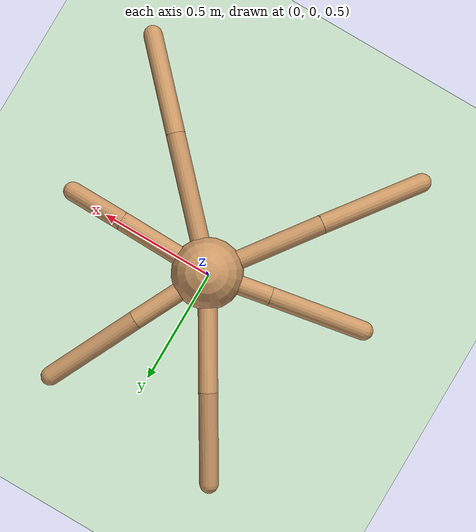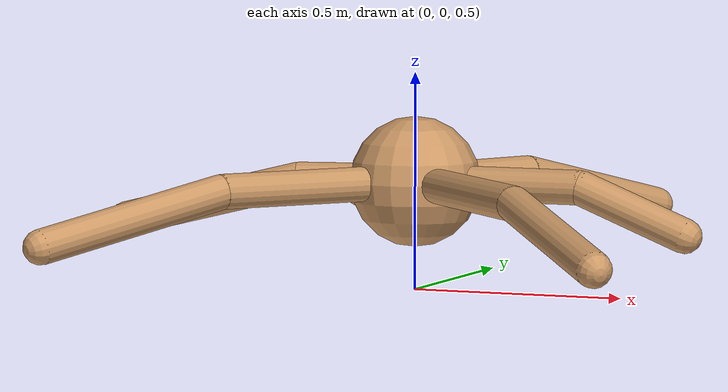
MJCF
<mujoco model="mutant_ant">
  <compiler angle="degree" coordinate="local" inertiafromgeom="true"/>
  <option integrator="RK4" timestep="0.01"/>
  <default>
    <joint armature="1" damping="1" limited="true"/>
    <geom conaffinity="1" condim="3" density="5.0" friction="1 0.5 0.5" margin="0.01" rgba="0.8 0.6 0.4 1"/>
  </default>
  <asset>
    <texture builtin="checker" height="512" name="texplane" rgb1=".2 .3 .4" rgb2=".1 0.15 0.2" type="2d" width="512"/>
    <material name="MatPlane" reflectance="0.5" shininess="1" specular="1" texrepeat="60 60" texture="texplane"/>
  </asset>
  <worldbody>
    <light cutoff="100" diffuse="1 1 1" dir="-0 0 -1.3" directional="true" exponent="1" pos="0 0 1.3" specular=".1 .1 .1"/>
    <geom conaffinity="1" condim="3" material="MatPlane" name="floor" pos="0 0 0" rgba="0.8 0.9 0.8 1" size="40 40 40" type="plane"/>
    <body name="torso" pos="0 0 0.75">
      <camera name="track" mode="trackcom" pos="0 -3 2.0" euler="60 0 0"/>
      <freejoint name="root"/>
      <geom name="torso_geom" pos="0 0 0" size="0.15" type="sphere"/>
      <body name="leg_0" pos="0 0 0" euler="0 0 -1.095">
        <geom fromto="0.0 0.0 0.0 0.1 0.0 0.0" name="aux_0_geom" size="0.04" type="capsule"/>
        <body name="leg_0_aux" pos="0.1 0.0 0">
          <joint axis="0 0 1" name="hip_0" pos="0.0 0.0 0.0" range="-28.716 19.041" type="hinge"/>
          <geom fromto="0.0 0.0 0.0 0.305 0.0 0.0" name="thigh_0_geom" size="0.04" type="capsule"/>
          <body pos="0.305 0.0 0" name="leg_0_ankle">
            <joint axis="0 1 0" name="ankle_0" pos="0.0 0.0 0.0" range="27.284 79.023" type="hinge"/>
            <geom fromto="0.0 0.0 0.0 0.251 0.0 -0.1" name="calf_0_geom" size="0.04" type="capsule"/>
          </body>
        </body>
      </body>
      <body name="leg_1" pos="0 0 0" euler="0 0 63.404">
        <geom fromto="0.0 0.0 0.0 0.1 0.0 0.0" name="aux_1_geom" size="0.04" type="capsule"/>
        <body name="leg_1_aux" pos="0.1 0.0 0">
          <joint axis="0 0 1" name="hip_1" pos="0.0 0.0 0.0" range="-21.401 15.607" type="hinge"/>
          <geom fromto="0.0 0.0 0.0 0.251 0.0 0.0" name="thigh_1_geom" size="0.04" type="capsule"/>
          <body pos="0.251 0.0 0" name="leg_1_ankle">
            <joint axis="0 1 0" name="ankle_1" pos="0.0 0.0 0.0" range="28.614 64.775" type="hinge"/>
            <geom fromto="0.0 0.0 0.0 0.422 0.0 -0.1" name="calf_1_geom" size="0.04" type="capsule"/>
          </body>
        </body>
      </body>
      <body name="leg_2" pos="0 0 0" euler="0 0 120.913">
        <geom fromto="0.0 0.0 0.0 0.1 0.0 0.0" name="aux_2_geom" size="0.04" type="capsule"/>
        <body name="leg_2_aux" pos="0.1 0.0 0">
          <joint axis="0 0 1" name="hip_2" pos="0.0 0.0 0.0" range="-25.204 32.293" type="hinge"/>
          <geom fromto="0.0 0.0 0.0 0.386 0.0 0.0" name="thigh_2_geom" size="0.04" type="capsule"/>
          <body pos="0.386 0.0 0" name="leg_2_ankle">
            <joint axis="0 1 0" name="ankle_2" pos="0.0 0.0 0.0" range="33.730 65.701" type="hinge"/>
            <geom fromto="0.0 0.0 0.0 0.378 0.0 -0.1" name="calf_2_geom" size="0.04" type="capsule"/>
          </body>
        </body>
      </body>
      <body name="leg_3" pos="0 0 0" euler="0 0 190.541">
        <geom fromto="0.0 0.0 0.0 0.1 0.0 0.0" name="aux_3_geom" size="0.04" type="capsule"/>
        <body name="leg_3_aux" pos="0.1 0.0 0">
          <joint axis="0 0 1" name="hip_3" pos="0.0 0.0 0.0" range="-22.343 33.460" type="hinge"/>
          <geom fromto="0.0 0.0 0.0 0.173 0.0 0.0" name="thigh_3_geom" size="0.04" type="capsule"/>
          <body pos="0.173 0.0 0" name="leg_3_ankle">
            <joint axis="0 1 0" name="ankle_3" pos="0.0 0.0 0.0" range="29.348 92.021" type="hinge"/>
            <geom fromto="0.0 0.0 0.0 0.412 0.0 -0.1" name="calf_3_geom" size="0.04" type="capsule"/>
          </body>
        </body>
      </body>
      <body name="leg_4" pos="0 0 0" euler="0 0 233.653">
        <geom fromto="0.0 0.0 0.0 0.1 0.0 0.0" name="aux_4_geom" size="0.04" type="capsule"/>
        <body name="leg_4_aux" pos="0.1 0.0 0">
          <joint axis="0 0 1" name="hip_4" pos="0.0 0.0 0.0" range="-16.093 31.549" type="hinge"/>
          <geom fromto="0.0 0.0 0.0 0.409 0.0 0.0" name="thigh_4_geom" size="0.04" type="capsule"/>
          <body pos="0.409 0.0 0" name="leg_4_ankle">
            <joint axis="0 1 0" name="ankle_4" pos="0.0 0.0 0.0" range="23.430 69.887" type="hinge"/>
            <geom fromto="0.0 0.0 0.0 0.455 0.0 -0.1" name="calf_4_geom" size="0.04" type="capsule"/>
          </body>
        </body>
      </body>
      <body name="leg_5" pos="0 0 0" euler="0 0 313.417">
        <geom fromto="0.0 0.0 0.0 0.1 0.0 0.0" name="aux_5_geom" size="0.04" type="capsule"/>
        <body name="leg_5_aux" pos="0.1 0.0 0">
          <joint axis="0 0 1" name="hip_5" pos="0.0 0.0 0.0" range="-30.006 18.495" type="hinge"/>
          <geom fromto="0.0 0.0 0.0 0.485 0.0 0.0" name="thigh_5_geom" size="0.04" type="capsule"/>
          <body pos="0.485 0.0 0" name="leg_5_ankle">
            <joint axis="0 1 0" name="ankle_5" pos="0.0 0.0 0.0" range="13.407 72.724" type="hinge"/>
            <geom fromto="0.0 0.0 0.0 0.436 0.0 -0.1" name="calf_5_geom" size="0.04" type="capsule"/>
          </body>
        </body>
      </body>
    </body>
  </worldbody>
  <actuator>
    <motor ctrllimited="true" ctrlrange="-1.0 1.0" joint="hip_0" gear="30"/>
    <motor ctrllimited="true" ctrlrange="-1.0 1.0" joint="ankle_0" gear="30"/>
    <motor ctrllimited="true" ctrlrange="-1.0 1.0" joint="hip_1" gear="30"/>
    <motor ctrllimited="true" ctrlrange="-1.0 1.0" joint="ankle_1" gear="30"/>
    <motor ctrllimited="true" ctrlrange="-1.0 1.0" joint="hip_2" gear="30"/>
    <motor ctrllimited="true" ctrlrange="-1.0 1.0" joint="ankle_2" gear="30"/>
    <motor ctrllimited="true" ctrlrange="-1.0 1.0" joint="hip_3" gear="30"/>
    <motor ctrllimited="true" ctrlrange="-1.0 1.0" joint="ankle_3" gear="30"/>
    <motor ctrllimited="true" ctrlrange="-1.0 1.0" joint="hip_4" gear="30"/>
    <motor ctrllimited="true" ctrlrange="-1.0 1.0" joint="ankle_4" gear="30"/>
    <motor ctrllimited="true" ctrlrange="-1.0 1.0" joint="hip_5" gear="30"/>
    <motor ctrllimited="true" ctrlrange="-1.0 1.0" joint="ankle_5" gear="30"/>
  </actuator>
</mujoco>
